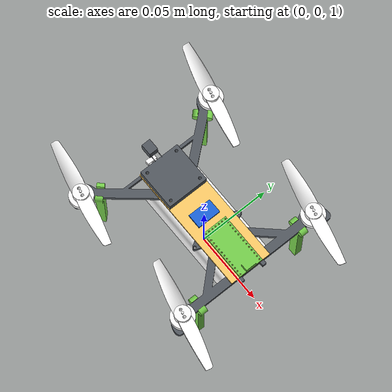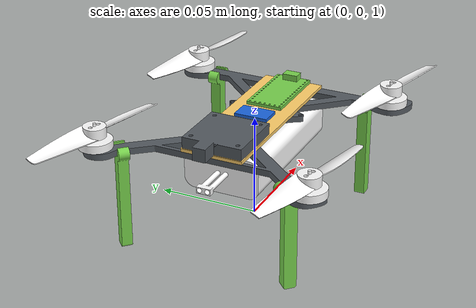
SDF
<?xml version="1.0" ?>
<sdf version="1.11">
  <world name="simple_drone_world">
    <physics name="1ms" type="ignored">
      <max_step_size>0.001</max_step_size>
      <real_time_factor>1.0</real_time_factor>
    </physics>
    <plugin
      filename="gz-sim-physics-system"
      name="gz::sim::systems::Physics">
    </plugin>
    <plugin
      filename="gz-sim-user-commands-system"
      name="gz::sim::systems::UserCommands">
    </plugin>
    <plugin
      filename="gz-sim-scene-broadcaster-system"
      name="gz::sim::systems::SceneBroadcaster">
    </plugin>

    <light type="directional" name="sun">
      <cast_shadows>true</cast_shadows>
      <pose>0 0 10 0 0 0</pose>
      <diffuse>0.8 0.8 0.8 1</diffuse>
      <specular>0.2 0.2 0.2 1</specular>
      <attenuation>
        <range>1000</range>
        <constant>0.9</constant>
        <linear>0.01</linear>
        <quadratic>0.001</quadratic>
      </attenuation>
      <direction>-0.5 0.1 -0.9</direction>
    </light>

    <model name="ground_plane">
      <static>true</static>
      <link name="link">
        <collision name="collision">
          <geometry>
            <plane>
              <normal>0 0 1</normal>
              <size>100 100</size>
            </plane>
          </geometry>
        </collision>
        <visual name="visual">
          <geometry>
            <plane>
              <normal>0 0 1</normal>
              <size>100 100</size>
            </plane>
          </geometry>
          <material>
            <ambient>0.8 0.8 0.8 1</ambient>
            <diffuse>0.8 0.8 0.8 1</diffuse>
            <specular>0.8 0.8 0.8 1</specular>
          </material>
        </visual>
      </link>
    </model>
    <include>
      <uri>model://drone/urdf/drone.sdf</uri>
      <name>drone</name>
      <pose>0 0 1.047 0 0 -1.5708</pose>
      <plugin
        filename="gz-sim-multicopter-motor-model-system"
        name="gz::sim::systems::MulticopterMotorModel">
        <robotNamespace>drone</robotNamespace>
        <jointName>dof_motor_prop_1</jointName>
        <linkName>prop__1_</linkName>
        <turningDirection>ccw</turningDirection>
        <maxRotVelocity>5760</maxRotVelocity>
        <motorConstant>6.0e-08</motorConstant>
        <momentConstant>0.005964552</momentConstant>
        <rotorDragCoefficient>8.06428e-05</rotorDragCoefficient>
        <rollingMomentCoefficient>0.0000001</rollingMomentCoefficient>
        <rotorVelocitySlowdownSim>20</rotorVelocitySlowdownSim>
        <actuator_number>0</actuator_number>
        <commandSubTopic>gazebo/command/motor_speed</commandSubTopic>
        <motorSpeedPubTopic>motor_speed/0</motorSpeedPubTopic>
        <motorType>velocity</motorType>
      </plugin>
      <plugin
        filename="gz-sim-multicopter-motor-model-system"
        name="gz::sim::systems::MulticopterMotorModel">
        <robotNamespace>drone</robotNamespace>
        <jointName>dof_motor_prop_2</jointName>
        <linkName>prop__2_</linkName>
        <turningDirection>cw</turningDirection>
        <maxRotVelocity>5760</maxRotVelocity>
        <motorConstant>6.0e-08</motorConstant>
        <momentConstant>0.005964552</momentConstant>
        <rotorDragCoefficient>8.06428e-05</rotorDragCoefficient>
        <rollingMomentCoefficient>0.0000001</rollingMomentCoefficient>
        <rotorVelocitySlowdownSim>20</rotorVelocitySlowdownSim>
        <actuator_number>1</actuator_number>
        <commandSubTopic>gazebo/command/motor_speed</commandSubTopic>
        <motorSpeedPubTopic>motor_speed/1</motorSpeedPubTopic>
        <motorType>velocity</motorType>
      </plugin>
      <plugin
        filename="gz-sim-multicopter-motor-model-system"
        name="gz::sim::systems::MulticopterMotorModel">
        <robotNamespace>drone</robotNamespace>
        <jointName>dof_motor_prop_3</jointName>
        <linkName>prop__3_</linkName>
        <turningDirection>cw</turningDirection>
        <maxRotVelocity>5760</maxRotVelocity>
        <motorConstant>6.0e-08</motorConstant>
        <momentConstant>0.005964552</momentConstant>
        <rotorDragCoefficient>8.06428e-05</rotorDragCoefficient>
        <rollingMomentCoefficient>0.0000001</rollingMomentCoefficient>
        <rotorVelocitySlowdownSim>20</rotorVelocitySlowdownSim>
        <actuator_number>2</actuator_number>
        <commandSubTopic>gazebo/command/motor_speed</commandSubTopic>
        <motorSpeedPubTopic>motor_speed/2</motorSpeedPubTopic>
        <motorType>velocity</motorType>
      </plugin>
      <plugin
        filename="gz-sim-multicopter-motor-model-system"
        name="gz::sim::systems::MulticopterMotorModel">
        <robotNamespace>drone</robotNamespace>
        <jointName>dof_motor_prop_4</jointName>
        <linkName>prop__4_</linkName>
        <turningDirection>ccw</turningDirection>
        <maxRotVelocity>5760</maxRotVelocity>
        <motorConstant>6.0e-08</motorConstant>
        <momentConstant>0.005964552</momentConstant>
        <rotorDragCoefficient>8.06428e-05</rotorDragCoefficient>
        <rollingMomentCoefficient>0.0000001</rollingMomentCoefficient>
        <rotorVelocitySlowdownSim>20</rotorVelocitySlowdownSim>
        <actuator_number>3</actuator_number>
        <commandSubTopic>gazebo/command/motor_speed</commandSubTopic>
        <motorSpeedPubTopic>motor_speed/3</motorSpeedPubTopic>
        <motorType>velocity</motorType>
      </plugin>
      <!-- Velocity controller driven by the Gazebo Teleop pad. -->
      <plugin
        filename="gz-sim-multicopter-control-system"
        name="gz::sim::systems::MulticopterVelocityControl">
        <robotNamespace>drone</robotNamespace>
        <commandSubTopic>gazebo/command/twist</commandSubTopic>
        <enableSubTopic>enable</enableSubTopic>
        <comLinkName>root</comLinkName>
        <velocityGain>1.25 1.25 0.2425</velocityGain>
        <attitudeGain>0.02 0.02 0.02</attitudeGain>
        <angularRateGain>0.005 0.005 0.005</angularRateGain>
        <!-- REQUIRED: without these the commanded velocity is clamped to the
             plugin defaults and the rotors barely spin. -->
        <maximumLinearAcceleration>2 2 2</maximumLinearAcceleration>
        <maximumLinearVelocity>2 2 2</maximumLinearVelocity>
        <maximumAngularVelocity>3 3 3</maximumAngularVelocity>
        <rotorConfiguration>
          <rotor>
            <jointName>dof_motor_prop_1</jointName>
            <forceConstant>6.0e-08</forceConstant>
            <momentConstant>0.005964552</momentConstant>
            <direction>1</direction>
          </rotor>
          <rotor>
            <jointName>dof_motor_prop_2</jointName>
            <forceConstant>6.0e-08</forceConstant>
            <momentConstant>0.005964552</momentConstant>
            <direction>-1</direction>
          </rotor>
          <rotor>
            <jointName>dof_motor_prop_3</jointName>
            <forceConstant>6.0e-08</forceConstant>
            <momentConstant>0.005964552</momentConstant>
            <direction>-1</direction>
          </rotor>
          <rotor>
            <jointName>dof_motor_prop_4</jointName>
            <forceConstant>6.0e-08</forceConstant>
            <momentConstant>0.005964552</momentConstant>
            <direction>1</direction>
          </rotor>
        </rotorConfiguration>
      </plugin>
      <!-- Match ROS's URDF frames; this model's base_link is at its origin. -->
      <plugin filename="gz-sim-odometry-publisher-system"
              name="gz::sim::systems::OdometryPublisher">
        <dimensions>3</dimensions>
        <odom_frame>world</odom_frame>
        <robot_base_frame>root</robot_base_frame>
        <odom_topic>/drone/odometry</odom_topic>
        <tf_topic>/drone/tf</tf_topic>
        <odom_publish_frequency>50</odom_publish_frequency>
      </plugin>

      <!-- Publish measured rotor angles, not synthetic visualization states. -->
      <plugin filename="gz-sim-joint-state-publisher-system"
              name="gz::sim::systems::JointStatePublisher">
        <topic>/drone/joint_states</topic>
        <update_rate>50</update_rate>
      </plugin>
    </include>
  </world>
</sdf>
